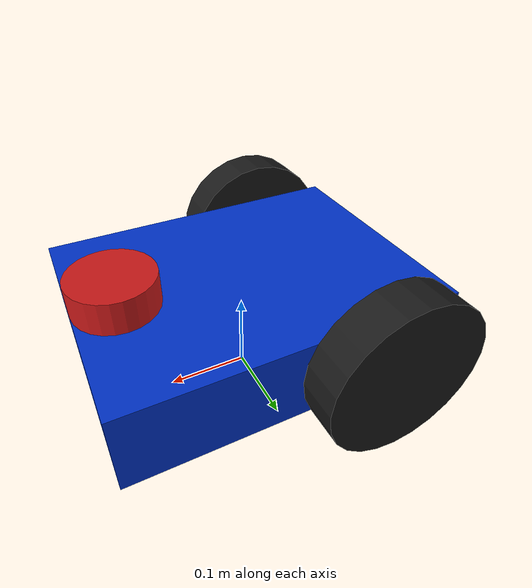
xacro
<?xml version="1.0"?>
<robot xmlns:xacro="http://www.ros.org/wiki/xacro" name="my_robot">

  <material name="blue">
    <color rgba="0 0.2 0.8 1"/>
  </material>
  <material name="black">
    <color rgba="0.1 0.1 0.1 1"/>
  </material>
  <material name="red">
    <color rgba="0.8 0.1 0.1 1"/>
  </material>

  <link name="base_footprint"/>

  <link name="base_link">
    <visual>
      <geometry><box size="0.4 0.3 0.1"/></geometry>
      <material name="blue"/>
    </visual>
    <collision>
      <geometry><box size="0.4 0.3 0.1"/></geometry>
    </collision>
    <inertial>
      <mass value="5.0"/>
      <inertia ixx="0.0416" ixy="0" ixz="0" iyy="0.0708" iyz="0" izz="0.104"/>
    </inertial>
  </link>
  <joint name="base_joint" type="fixed">
    <parent link="base_footprint"/>
    <child link="base_link"/>
    <origin xyz="0 0 0.1" rpy="0 0 0"/>
  </joint>

  <link name="left_wheel">
    <visual>
      <geometry><cylinder radius="0.1" length="0.05"/></geometry>
      <material name="black"/>
    </visual>
    <collision>
      <geometry><cylinder radius="0.1" length="0.05"/></geometry>
    </collision>
    <inertial>
      <mass value="0.5"/>
      <inertia ixx="0.001354" ixy="0" ixz="0" iyy="0.001354" iyz="0" izz="0.0025"/>
    </inertial>
  </link>
  <joint name="left_wheel_joint" type="continuous">
    <parent link="base_link"/>
    <child link="left_wheel"/>
    <origin xyz="-0.10 0.175 0" rpy="-1.5708 0 0"/>
    <axis xyz="0 0 1"/>
  </joint>

  <link name="right_wheel">
    <visual>
      <geometry><cylinder radius="0.1" length="0.05"/></geometry>
      <material name="black"/>
    </visual>
    <collision>
      <geometry><cylinder radius="0.1" length="0.05"/></geometry>
    </collision>
    <inertial>
      <mass value="0.5"/>
      <inertia ixx="0.001354" ixy="0" ixz="0" iyy="0.001354" iyz="0" izz="0.0025"/>
    </inertial>
  </link>
  <joint name="right_wheel_joint" type="continuous">
    <parent link="base_link"/>
    <child link="right_wheel"/>
    <origin xyz="-0.10 -0.175 0" rpy="-1.5708 0 0"/>
    <axis xyz="0 0 1"/>
  </joint>

  <link name="caster_wheel">
    <visual>
      <geometry><sphere radius="0.05"/></geometry>
      <material name="black"/>
    </visual>
    <collision>
      <geometry><sphere radius="0.05"/></geometry>
    </collision>
    <inertial>
      <mass value="0.2"/>
      <inertia ixx="0.0002" ixy="0" ixz="0" iyy="0.0002" iyz="0" izz="0.0002"/>
    </inertial>
  </link>
  <joint name="caster_joint" type="fixed">
    <parent link="base_link"/>
    <child link="caster_wheel"/>
    <origin xyz="0.15 0 -0.05"/>
  </joint>
  <gazebo reference="caster_wheel">
    <mu1>0.001</mu1>
    <mu2>0.001</mu2>
  </gazebo>

  <link name="laser_frame">
    <visual>
      <geometry><cylinder radius="0.05" length="0.04"/></geometry>
      <material name="red"/>
    </visual>
    <collision>
      <geometry><cylinder radius="0.05" length="0.04"/></geometry>
    </collision>
    <inertial>
      <mass value="0.1"/>
      <inertia ixx="0.000075" ixy="0" ixz="0" iyy="0.000075" iyz="0" izz="0.000125"/>
    </inertial>
  </link>
  <joint name="laser_joint" type="fixed">
    <parent link="base_link"/>
    <child link="laser_frame"/>
    <origin xyz="0.15 0 0.07" rpy="0 0 0"/>
  </joint>

  <gazebo>
    <plugin filename="gz-sim-diff-drive-system" name="gz::sim::systems::DiffDrive">
      <left_joint>left_wheel_joint</left_joint>
      <right_joint>right_wheel_joint</right_joint>
      <wheel_separation>0.35</wheel_separation>
      <wheel_radius>0.1</wheel_radius>

      <topic>/cmd_vel</topic>
      <odom_topic>/odom</odom_topic>
      <tf_topic>/tf</tf_topic>

      <frame_id>odom</frame_id>
      <child_frame_id>base_footprint</child_frame_id>
      <odom_publisher_frequency>30</odom_publisher_frequency>
    </plugin>

    <plugin filename="gz-sim-joint-state-publisher-system" name="gz::sim::systems::JointStatePublisher">
      <topic>/joint_states</topic>
      <joint_name>left_wheel_joint</joint_name>
      <joint_name>right_wheel_joint</joint_name>
    </plugin>
  </gazebo>

  <gazebo reference="laser_frame">
    <sensor name="lidar" type="gpu_lidar">
      <pose>0 0 0 0 0 0</pose>
      <topic>/scan</topic>
      <gz_frame_id>laser_frame</gz_frame_id> <update_rate>10</update_rate>
      <ray>
        <scan>
          <horizontal>
            <samples>360</samples>
            <resolution>1</resolution>
            <min_angle>-3.14159</min_angle>
            <max_angle>3.14159</max_angle>
          </horizontal>
        </scan>
        <range>
          <min>0.12</min>
          <max>12.0</max>
          <resolution>0.015</resolution>
        </range>
      </ray>
      <always_on>true</always_on>
      <visualize>true</visualize>
    </sensor>
  </gazebo>
</robot>
